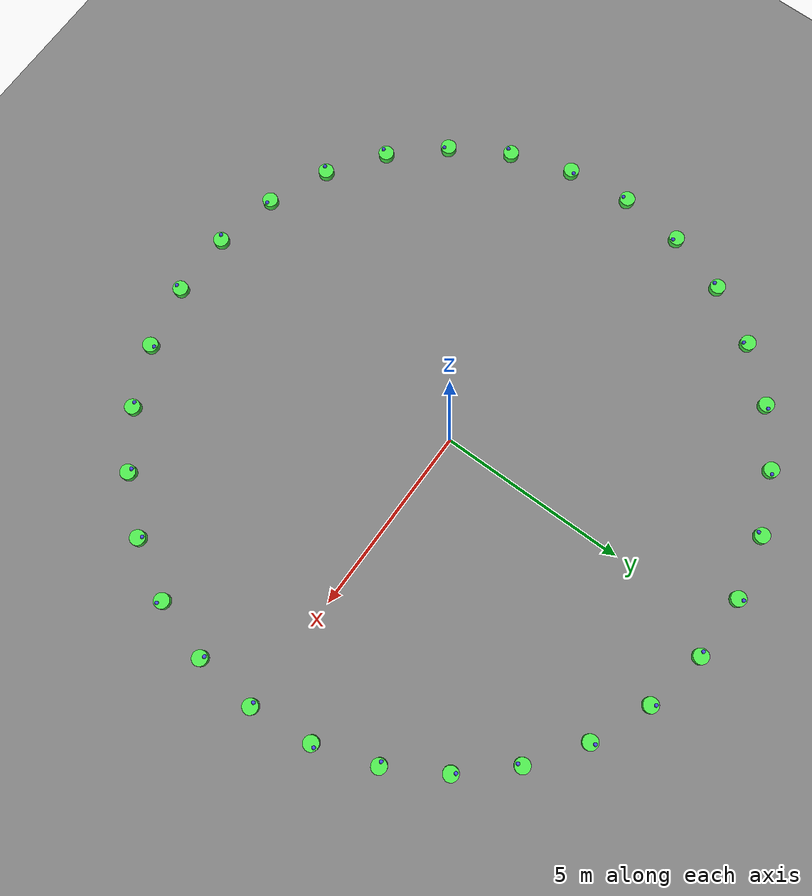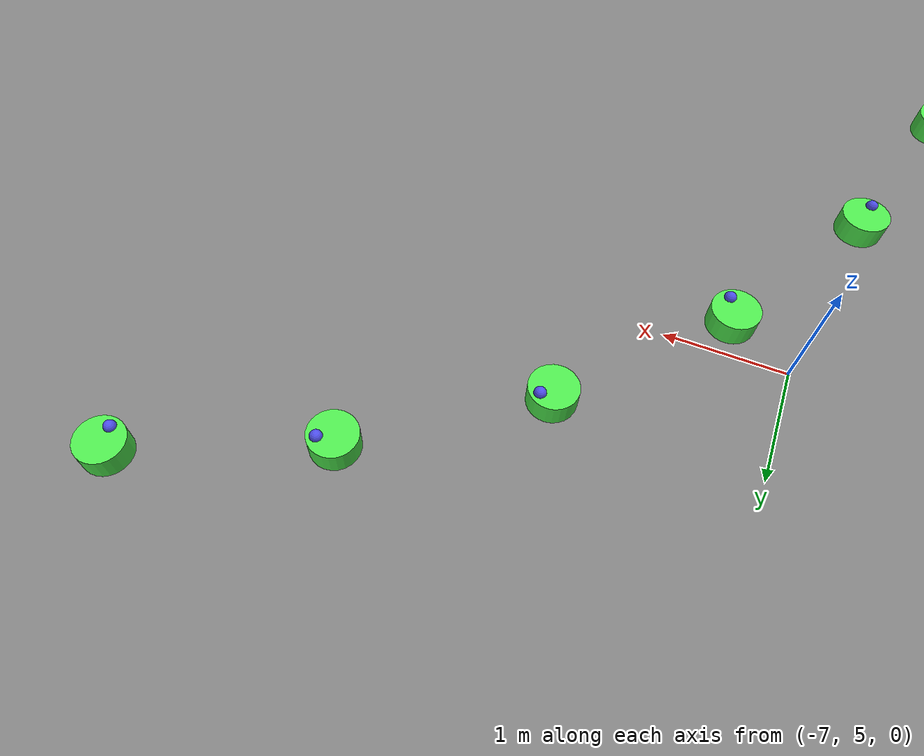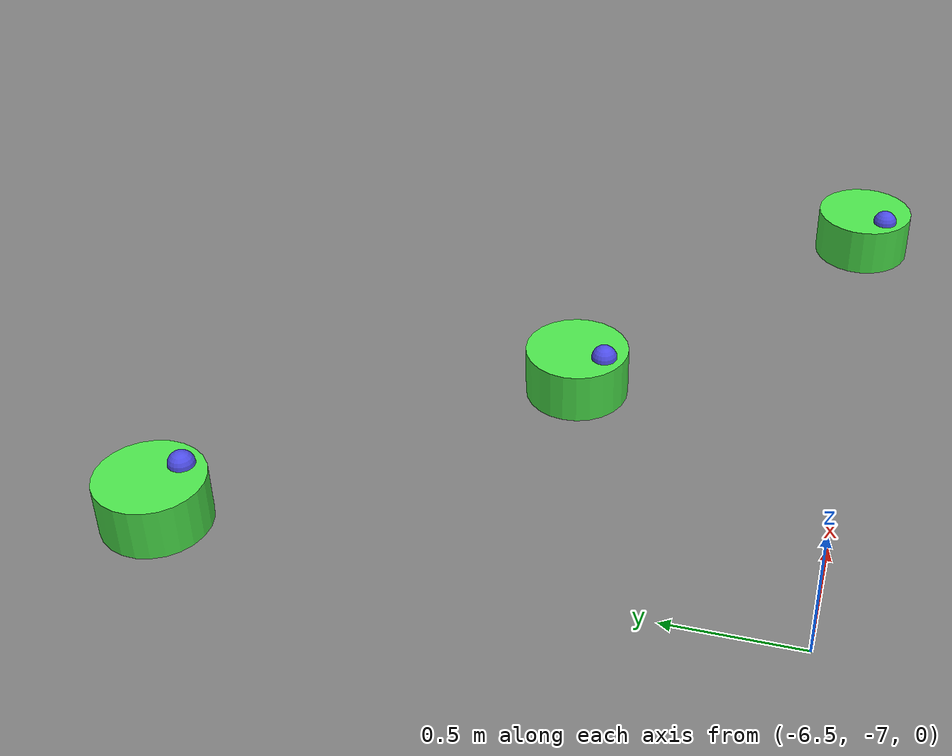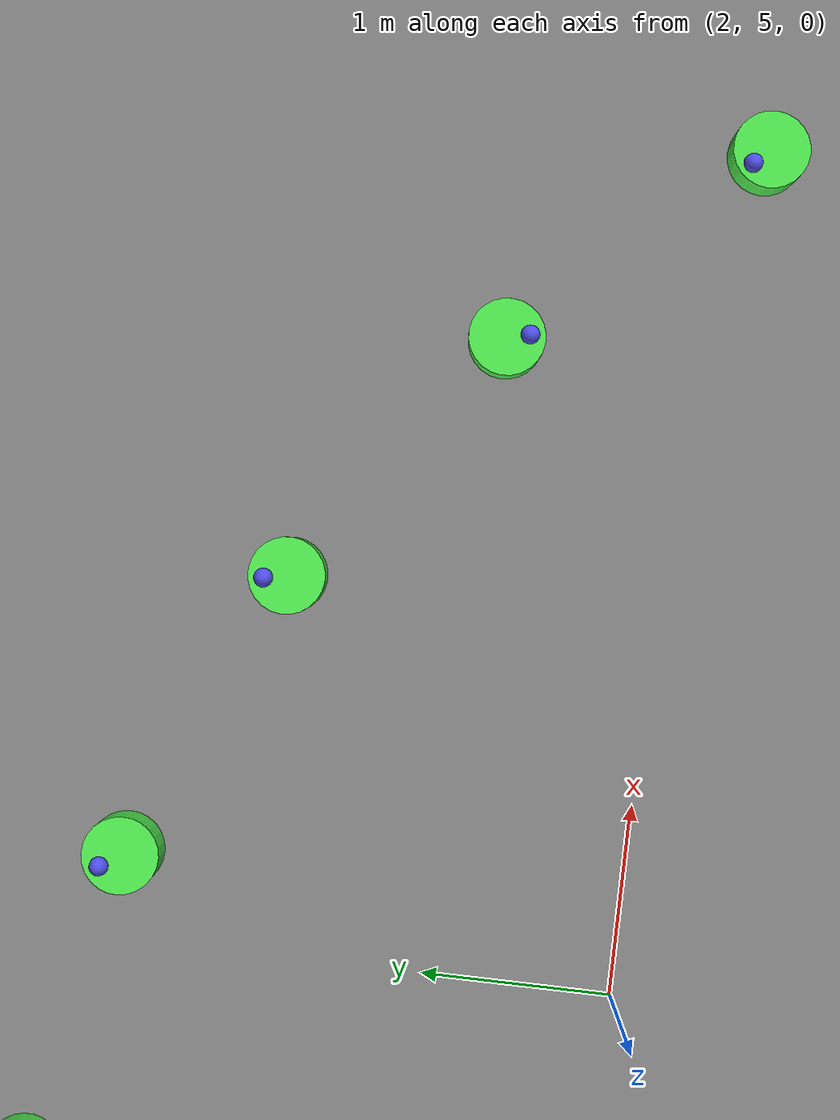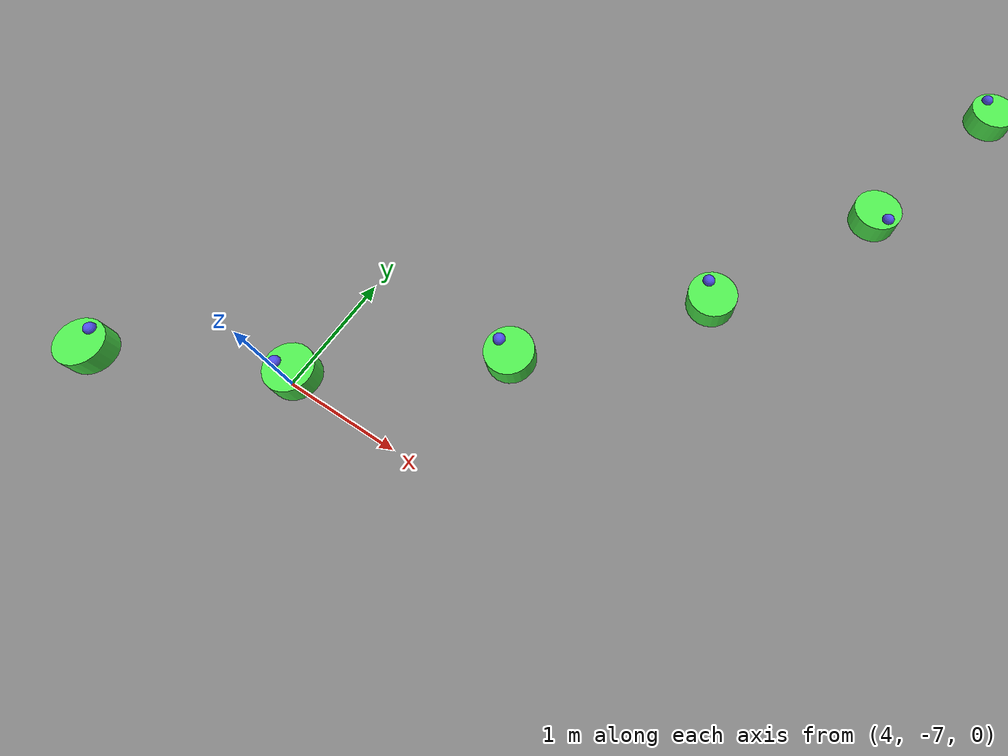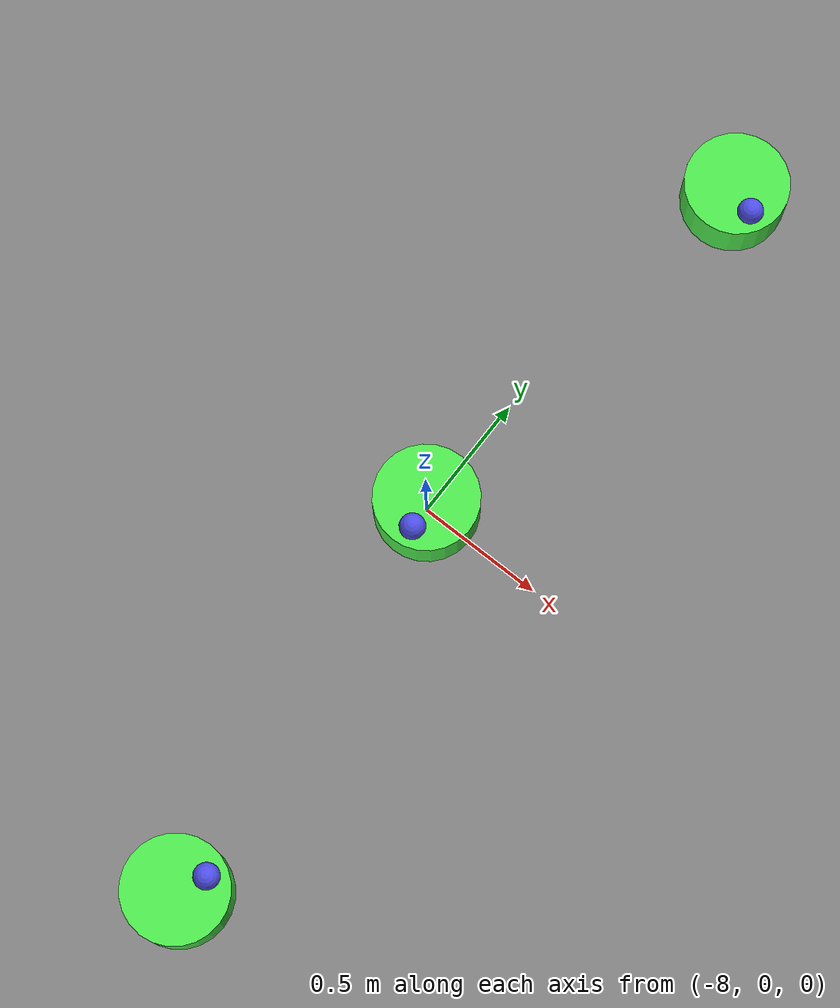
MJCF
<mujoco>
<default>
	<geom friction="0.1 0.005 0.0001"/>
</default>
<visual>
	 <global offwidth="1580" offheight="1580" />
</visual>
<worldbody>
<light name="uplight_0" diffuse="0.4 0.4 0.4" pos="0 0 20" dir="0 0 -1" />
<light name="uplight_1" diffuse="0.4 0.4 0.4" pos="10 10 20" dir="0 0 -1" />
<light name="uplight_2" diffuse="0.4 0.4 0.4" pos="-10 -10 20" dir="0 0 -1" />
<light name="uplight_3" diffuse="0.4 0.4 0.4" pos="10 -10 20" dir="0 0 -1" />
<light name="uplight_4" diffuse="0.4 0.4 0.4" pos="-10 10 20" dir="0 0 -1" />
<geom contype="2" friction="1 0.005 0.0001" pos="0 0 0" euler="0 0 0" type="plane" size="20 20 0.01" rgba="0.5 0.5 0.5 1"/>
<camera mode="fixed" pos="0 0 20" fovy="75"></camera>

<body name="robot_0" pos="8.0 0.0 0" euler="0 0 175.17976686611246">
    <!-- shell radius 17cm, wheel radius 4cm, distance between wheels 28cm -->
    <freejoint name="robot_0"></freejoint>
    <site name="front-flag_0" rgba="0.3 0.3 0.9 1" pos="0.12 0 0.22" type="sphere" size="0.05"></site>

    <body name="front-wheel_0" pos="0.14 0  0.01">
        <joint type="ball" pos="0 0 0"></joint>
        <geom friction="1 0.005 0.0001" contype="2" conaffinity="2" type="sphere" size="0.01"></geom>
    </body>

    <body name="back-wheel_0" pos="-0.14 0  0.01">
        <joint type="ball" pos="0 0 0"></joint>
        <geom friction="1 0.005 0.0001" contype="2" conaffinity="2" type="sphere" size="0.01"></geom>
    </body>

    <body name="left-wheel_0" pos="0 0.14 0.04" euler="90 0 0">
        <joint damping="0.3" name="left-wheel_0" type="hinge" pos="0 0 0" axis="0 0 -1"></joint>
        <geom friction="1 0.005 0.0001" contype="2" conaffinity="2" rgba="0.1 0.1 0.1 1" type="cylinder" size="0.04 0.005"></geom>
    </body>

    <body name="right-wheel_0" pos="0 -0.14 0.04" euler="-90 0  0">
        <joint damping="0.3" name="right-wheel_0" type="hinge" pos="0 0 0" axis="0 0 1"></joint>
        <geom friction="1 0.005 0.0001" contype="2" conaffinity="2" rgba="0.1 0.1 0.1 1" type="cylinder" size="0.04 0.005"></geom>
    </body>
    <body name="shell_0">
      <geom type="cylinder" rgba="0.3 0.9 0.3 1" pos="0 0 0.12" size="0.2 0.1"></geom>
    </body>
</body>

<body name="robot_1" pos="7.8251808058704455 1.6632935265420745 0" euler="0 0 71.27226613489458">
    <!-- shell radius 17cm, wheel radius 4cm, distance between wheels 28cm -->
    <freejoint name="robot_1"></freejoint>
    <site name="front-flag_1" rgba="0.3 0.3 0.9 1" pos="0.12 0 0.22" type="sphere" size="0.05"></site>

    <body name="front-wheel_1" pos="0.14 0  0.01">
        <joint type="ball" pos="0 0 0"></joint>
        <geom friction="1 0.005 0.0001" contype="2" conaffinity="2" type="sphere" size="0.01"></geom>
    </body>

    <body name="back-wheel_1" pos="-0.14 0  0.01">
        <joint type="ball" pos="0 0 0"></joint>
        <geom friction="1 0.005 0.0001" contype="2" conaffinity="2" type="sphere" size="0.01"></geom>
    </body>

    <body name="left-wheel_1" pos="0 0.14 0.04" euler="90 0 0">
        <joint damping="0.3" name="left-wheel_1" type="hinge" pos="0 0 0" axis="0 0 -1"></joint>
        <geom friction="1 0.005 0.0001" contype="2" conaffinity="2" rgba="0.1 0.1 0.1 1" type="cylinder" size="0.04 0.005"></geom>
    </body>

    <body name="right-wheel_1" pos="0 -0.14 0.04" euler="-90 0  0">
        <joint damping="0.3" name="right-wheel_1" type="hinge" pos="0 0 0" axis="0 0 1"></joint>
        <geom friction="1 0.005 0.0001" contype="2" conaffinity="2" rgba="0.1 0.1 0.1 1" type="cylinder" size="0.04 0.005"></geom>
    </body>
    <body name="shell_1">
      <geom type="cylinder" rgba="0.3 0.9 0.3 1" pos="0 0 0.12" size="0.2 0.1"></geom>
    </body>
</body>

<body name="robot_2" pos="7.308363661140807 3.2538931446064012 0" euler="0 0 190.2047109060873">
    <!-- shell radius 17cm, wheel radius 4cm, distance between wheels 28cm -->
    <freejoint name="robot_2"></freejoint>
    <site name="front-flag_2" rgba="0.3 0.3 0.9 1" pos="0.12 0 0.22" type="sphere" size="0.05"></site>

    <body name="front-wheel_2" pos="0.14 0  0.01">
        <joint type="ball" pos="0 0 0"></joint>
        <geom friction="1 0.005 0.0001" contype="2" conaffinity="2" type="sphere" size="0.01"></geom>
    </body>

    <body name="back-wheel_2" pos="-0.14 0  0.01">
        <joint type="ball" pos="0 0 0"></joint>
        <geom friction="1 0.005 0.0001" contype="2" conaffinity="2" type="sphere" size="0.01"></geom>
    </body>

    <body name="left-wheel_2" pos="0 0.14 0.04" euler="90 0 0">
        <joint damping="0.3" name="left-wheel_2" type="hinge" pos="0 0 0" axis="0 0 -1"></joint>
        <geom friction="1 0.005 0.0001" contype="2" conaffinity="2" rgba="0.1 0.1 0.1 1" type="cylinder" size="0.04 0.005"></geom>
    </body>

    <body name="right-wheel_2" pos="0 -0.14 0.04" euler="-90 0  0">
        <joint damping="0.3" name="right-wheel_2" type="hinge" pos="0 0 0" axis="0 0 1"></joint>
        <geom friction="1 0.005 0.0001" contype="2" conaffinity="2" rgba="0.1 0.1 0.1 1" type="cylinder" size="0.04 0.005"></geom>
    </body>
    <body name="shell_2">
      <geom type="cylinder" rgba="0.3 0.9 0.3 1" pos="0 0 0.12" size="0.2 0.1"></geom>
    </body>
</body>

<body name="robot_3" pos="6.47213595499958 4.702282018339785 0" euler="0 0 132.7303648254095">
    <!-- shell radius 17cm, wheel radius 4cm, distance between wheels 28cm -->
    <freejoint name="robot_3"></freejoint>
    <site name="front-flag_3" rgba="0.3 0.3 0.9 1" pos="0.12 0 0.22" type="sphere" size="0.05"></site>

    <body name="front-wheel_3" pos="0.14 0  0.01">
        <joint type="ball" pos="0 0 0"></joint>
        <geom friction="1 0.005 0.0001" contype="2" conaffinity="2" type="sphere" size="0.01"></geom>
    </body>

    <body name="back-wheel_3" pos="-0.14 0  0.01">
        <joint type="ball" pos="0 0 0"></joint>
        <geom friction="1 0.005 0.0001" contype="2" conaffinity="2" type="sphere" size="0.01"></geom>
    </body>

    <body name="left-wheel_3" pos="0 0.14 0.04" euler="90 0 0">
        <joint damping="0.3" name="left-wheel_3" type="hinge" pos="0 0 0" axis="0 0 -1"></joint>
        <geom friction="1 0.005 0.0001" contype="2" conaffinity="2" rgba="0.1 0.1 0.1 1" type="cylinder" size="0.04 0.005"></geom>
    </body>

    <body name="right-wheel_3" pos="0 -0.14 0.04" euler="-90 0  0">
        <joint damping="0.3" name="right-wheel_3" type="hinge" pos="0 0 0" axis="0 0 1"></joint>
        <geom friction="1 0.005 0.0001" contype="2" conaffinity="2" rgba="0.1 0.1 0.1 1" type="cylinder" size="0.04 0.005"></geom>
    </body>
    <body name="shell_3">
      <geom type="cylinder" rgba="0.3 0.9 0.3 1" pos="0 0 0.12" size="0.2 0.1"></geom>
    </body>
</body>

<body name="robot_4" pos="5.353044850870866 5.945158603819153 0" euler="0 0 281.8349707010589">
    <!-- shell radius 17cm, wheel radius 4cm, distance between wheels 28cm -->
    <freejoint name="robot_4"></freejoint>
    <site name="front-flag_4" rgba="0.3 0.3 0.9 1" pos="0.12 0 0.22" type="sphere" size="0.05"></site>

    <body name="front-wheel_4" pos="0.14 0  0.01">
        <joint type="ball" pos="0 0 0"></joint>
        <geom friction="1 0.005 0.0001" contype="2" conaffinity="2" type="sphere" size="0.01"></geom>
    </body>

    <body name="back-wheel_4" pos="-0.14 0  0.01">
        <joint type="ball" pos="0 0 0"></joint>
        <geom friction="1 0.005 0.0001" contype="2" conaffinity="2" type="sphere" size="0.01"></geom>
    </body>

    <body name="left-wheel_4" pos="0 0.14 0.04" euler="90 0 0">
        <joint damping="0.3" name="left-wheel_4" type="hinge" pos="0 0 0" axis="0 0 -1"></joint>
        <geom friction="1 0.005 0.0001" contype="2" conaffinity="2" rgba="0.1 0.1 0.1 1" type="cylinder" size="0.04 0.005"></geom>
    </body>

    <body name="right-wheel_4" pos="0 -0.14 0.04" euler="-90 0  0">
        <joint damping="0.3" name="right-wheel_4" type="hinge" pos="0 0 0" axis="0 0 1"></joint>
        <geom friction="1 0.005 0.0001" contype="2" conaffinity="2" rgba="0.1 0.1 0.1 1" type="cylinder" size="0.04 0.005"></geom>
    </body>
    <body name="shell_4">
      <geom type="cylinder" rgba="0.3 0.9 0.3 1" pos="0 0 0.12" size="0.2 0.1"></geom>
    </body>
</body>

<body name="robot_5" pos="4.000000000000001 6.928203230275509 0" euler="0 0 101.75491033799237">
    <!-- shell radius 17cm, wheel radius 4cm, distance between wheels 28cm -->
    <freejoint name="robot_5"></freejoint>
    <site name="front-flag_5" rgba="0.3 0.3 0.9 1" pos="0.12 0 0.22" type="sphere" size="0.05"></site>

    <body name="front-wheel_5" pos="0.14 0  0.01">
        <joint type="ball" pos="0 0 0"></joint>
        <geom friction="1 0.005 0.0001" contype="2" conaffinity="2" type="sphere" size="0.01"></geom>
    </body>

    <body name="back-wheel_5" pos="-0.14 0  0.01">
        <joint type="ball" pos="0 0 0"></joint>
        <geom friction="1 0.005 0.0001" contype="2" conaffinity="2" type="sphere" size="0.01"></geom>
    </body>

    <body name="left-wheel_5" pos="0 0.14 0.04" euler="90 0 0">
        <joint damping="0.3" name="left-wheel_5" type="hinge" pos="0 0 0" axis="0 0 -1"></joint>
        <geom friction="1 0.005 0.0001" contype="2" conaffinity="2" rgba="0.1 0.1 0.1 1" type="cylinder" size="0.04 0.005"></geom>
    </body>

    <body name="right-wheel_5" pos="0 -0.14 0.04" euler="-90 0  0">
        <joint damping="0.3" name="right-wheel_5" type="hinge" pos="0 0 0" axis="0 0 1"></joint>
        <geom friction="1 0.005 0.0001" contype="2" conaffinity="2" rgba="0.1 0.1 0.1 1" type="cylinder" size="0.04 0.005"></geom>
    </body>
    <body name="shell_5">
      <geom type="cylinder" rgba="0.3 0.9 0.3 1" pos="0 0 0.12" size="0.2 0.1"></geom>
    </body>
</body>

<body name="robot_6" pos="2.4721359549995796 7.608452130361228 0" euler="0 0 123.04947978521677">
    <!-- shell radius 17cm, wheel radius 4cm, distance between wheels 28cm -->
    <freejoint name="robot_6"></freejoint>
    <site name="front-flag_6" rgba="0.3 0.3 0.9 1" pos="0.12 0 0.22" type="sphere" size="0.05"></site>

    <body name="front-wheel_6" pos="0.14 0  0.01">
        <joint type="ball" pos="0 0 0"></joint>
        <geom friction="1 0.005 0.0001" contype="2" conaffinity="2" type="sphere" size="0.01"></geom>
    </body>

    <body name="back-wheel_6" pos="-0.14 0  0.01">
        <joint type="ball" pos="0 0 0"></joint>
        <geom friction="1 0.005 0.0001" contype="2" conaffinity="2" type="sphere" size="0.01"></geom>
    </body>

    <body name="left-wheel_6" pos="0 0.14 0.04" euler="90 0 0">
        <joint damping="0.3" name="left-wheel_6" type="hinge" pos="0 0 0" axis="0 0 -1"></joint>
        <geom friction="1 0.005 0.0001" contype="2" conaffinity="2" rgba="0.1 0.1 0.1 1" type="cylinder" size="0.04 0.005"></geom>
    </body>

    <body name="right-wheel_6" pos="0 -0.14 0.04" euler="-90 0  0">
        <joint damping="0.3" name="right-wheel_6" type="hinge" pos="0 0 0" axis="0 0 1"></joint>
        <geom friction="1 0.005 0.0001" contype="2" conaffinity="2" rgba="0.1 0.1 0.1 1" type="cylinder" size="0.04 0.005"></geom>
    </body>
    <body name="shell_6">
      <geom type="cylinder" rgba="0.3 0.9 0.3 1" pos="0 0 0.12" size="0.2 0.1"></geom>
    </body>
</body>

<body name="robot_7" pos="0.8362277061412294 7.956175162946186 0" euler="0 0 187.4988707946689">
    <!-- shell radius 17cm, wheel radius 4cm, distance between wheels 28cm -->
    <freejoint name="robot_7"></freejoint>
    <site name="front-flag_7" rgba="0.3 0.3 0.9 1" pos="0.12 0 0.22" type="sphere" size="0.05"></site>

    <body name="front-wheel_7" pos="0.14 0  0.01">
        <joint type="ball" pos="0 0 0"></joint>
        <geom friction="1 0.005 0.0001" contype="2" conaffinity="2" type="sphere" size="0.01"></geom>
    </body>

    <body name="back-wheel_7" pos="-0.14 0  0.01">
        <joint type="ball" pos="0 0 0"></joint>
        <geom friction="1 0.005 0.0001" contype="2" conaffinity="2" type="sphere" size="0.01"></geom>
    </body>

    <body name="left-wheel_7" pos="0 0.14 0.04" euler="90 0 0">
        <joint damping="0.3" name="left-wheel_7" type="hinge" pos="0 0 0" axis="0 0 -1"></joint>
        <geom friction="1 0.005 0.0001" contype="2" conaffinity="2" rgba="0.1 0.1 0.1 1" type="cylinder" size="0.04 0.005"></geom>
    </body>

    <body name="right-wheel_7" pos="0 -0.14 0.04" euler="-90 0  0">
        <joint damping="0.3" name="right-wheel_7" type="hinge" pos="0 0 0" axis="0 0 1"></joint>
        <geom friction="1 0.005 0.0001" contype="2" conaffinity="2" rgba="0.1 0.1 0.1 1" type="cylinder" size="0.04 0.005"></geom>
    </body>
    <body name="shell_7">
      <geom type="cylinder" rgba="0.3 0.9 0.3 1" pos="0 0 0.12" size="0.2 0.1"></geom>
    </body>
</body>

<body name="robot_8" pos="-0.8362277061412267 7.956175162946187 0" euler="0 0 102.82999987320555">
    <!-- shell radius 17cm, wheel radius 4cm, distance between wheels 28cm -->
    <freejoint name="robot_8"></freejoint>
    <site name="front-flag_8" rgba="0.3 0.3 0.9 1" pos="0.12 0 0.22" type="sphere" size="0.05"></site>

    <body name="front-wheel_8" pos="0.14 0  0.01">
        <joint type="ball" pos="0 0 0"></joint>
        <geom friction="1 0.005 0.0001" contype="2" conaffinity="2" type="sphere" size="0.01"></geom>
    </body>

    <body name="back-wheel_8" pos="-0.14 0  0.01">
        <joint type="ball" pos="0 0 0"></joint>
        <geom friction="1 0.005 0.0001" contype="2" conaffinity="2" type="sphere" size="0.01"></geom>
    </body>

    <body name="left-wheel_8" pos="0 0.14 0.04" euler="90 0 0">
        <joint damping="0.3" name="left-wheel_8" type="hinge" pos="0 0 0" axis="0 0 -1"></joint>
        <geom friction="1 0.005 0.0001" contype="2" conaffinity="2" rgba="0.1 0.1 0.1 1" type="cylinder" size="0.04 0.005"></geom>
    </body>

    <body name="right-wheel_8" pos="0 -0.14 0.04" euler="-90 0  0">
        <joint damping="0.3" name="right-wheel_8" type="hinge" pos="0 0 0" axis="0 0 1"></joint>
        <geom friction="1 0.005 0.0001" contype="2" conaffinity="2" rgba="0.1 0.1 0.1 1" type="cylinder" size="0.04 0.005"></geom>
    </body>
    <body name="shell_8">
      <geom type="cylinder" rgba="0.3 0.9 0.3 1" pos="0 0 0.12" size="0.2 0.1"></geom>
    </body>
</body>

<body name="robot_9" pos="-2.4721359549995787 7.608452130361229 0" euler="0 0 264.263178795489">
    <!-- shell radius 17cm, wheel radius 4cm, distance between wheels 28cm -->
    <freejoint name="robot_9"></freejoint>
    <site name="front-flag_9" rgba="0.3 0.3 0.9 1" pos="0.12 0 0.22" type="sphere" size="0.05"></site>

    <body name="front-wheel_9" pos="0.14 0  0.01">
        <joint type="ball" pos="0 0 0"></joint>
        <geom friction="1 0.005 0.0001" contype="2" conaffinity="2" type="sphere" size="0.01"></geom>
    </body>

    <body name="back-wheel_9" pos="-0.14 0  0.01">
        <joint type="ball" pos="0 0 0"></joint>
        <geom friction="1 0.005 0.0001" contype="2" conaffinity="2" type="sphere" size="0.01"></geom>
    </body>

    <body name="left-wheel_9" pos="0 0.14 0.04" euler="90 0 0">
        <joint damping="0.3" name="left-wheel_9" type="hinge" pos="0 0 0" axis="0 0 -1"></joint>
        <geom friction="1 0.005 0.0001" contype="2" conaffinity="2" rgba="0.1 0.1 0.1 1" type="cylinder" size="0.04 0.005"></geom>
    </body>

    <body name="right-wheel_9" pos="0 -0.14 0.04" euler="-90 0  0">
        <joint damping="0.3" name="right-wheel_9" type="hinge" pos="0 0 0" axis="0 0 1"></joint>
        <geom friction="1 0.005 0.0001" contype="2" conaffinity="2" rgba="0.1 0.1 0.1 1" type="cylinder" size="0.04 0.005"></geom>
    </body>
    <body name="shell_9">
      <geom type="cylinder" rgba="0.3 0.9 0.3 1" pos="0 0 0.12" size="0.2 0.1"></geom>
    </body>
</body>

<body name="robot_10" pos="-3.9999999999999982 6.92820323027551 0" euler="0 0 32.669801687568246">
    <!-- shell radius 17cm, wheel radius 4cm, distance between wheels 28cm -->
    <freejoint name="robot_10"></freejoint>
    <site name="front-flag_10" rgba="0.3 0.3 0.9 1" pos="0.12 0 0.22" type="sphere" size="0.05"></site>

    <body name="front-wheel_10" pos="0.14 0  0.01">
        <joint type="ball" pos="0 0 0"></joint>
        <geom friction="1 0.005 0.0001" contype="2" conaffinity="2" type="sphere" size="0.01"></geom>
    </body>

    <body name="back-wheel_10" pos="-0.14 0  0.01">
        <joint type="ball" pos="0 0 0"></joint>
        <geom friction="1 0.005 0.0001" contype="2" conaffinity="2" type="sphere" size="0.01"></geom>
    </body>

    <body name="left-wheel_10" pos="0 0.14 0.04" euler="90 0 0">
        <joint damping="0.3" name="left-wheel_10" type="hinge" pos="0 0 0" axis="0 0 -1"></joint>
        <geom friction="1 0.005 0.0001" contype="2" conaffinity="2" rgba="0.1 0.1 0.1 1" type="cylinder" size="0.04 0.005"></geom>
    </body>

    <body name="right-wheel_10" pos="0 -0.14 0.04" euler="-90 0  0">
        <joint damping="0.3" name="right-wheel_10" type="hinge" pos="0 0 0" axis="0 0 1"></joint>
        <geom friction="1 0.005 0.0001" contype="2" conaffinity="2" rgba="0.1 0.1 0.1 1" type="cylinder" size="0.04 0.005"></geom>
    </body>
    <body name="shell_10">
      <geom type="cylinder" rgba="0.3 0.9 0.3 1" pos="0 0 0.12" size="0.2 0.1"></geom>
    </body>
</body>

<body name="robot_11" pos="-5.353044850870863 5.945158603819156 0" euler="0 0 48.75332740168098">
    <!-- shell radius 17cm, wheel radius 4cm, distance between wheels 28cm -->
    <freejoint name="robot_11"></freejoint>
    <site name="front-flag_11" rgba="0.3 0.3 0.9 1" pos="0.12 0 0.22" type="sphere" size="0.05"></site>

    <body name="front-wheel_11" pos="0.14 0  0.01">
        <joint type="ball" pos="0 0 0"></joint>
        <geom friction="1 0.005 0.0001" contype="2" conaffinity="2" type="sphere" size="0.01"></geom>
    </body>

    <body name="back-wheel_11" pos="-0.14 0  0.01">
        <joint type="ball" pos="0 0 0"></joint>
        <geom friction="1 0.005 0.0001" contype="2" conaffinity="2" type="sphere" size="0.01"></geom>
    </body>

    <body name="left-wheel_11" pos="0 0.14 0.04" euler="90 0 0">
        <joint damping="0.3" name="left-wheel_11" type="hinge" pos="0 0 0" axis="0 0 -1"></joint>
        <geom friction="1 0.005 0.0001" contype="2" conaffinity="2" rgba="0.1 0.1 0.1 1" type="cylinder" size="0.04 0.005"></geom>
    </body>

    <body name="right-wheel_11" pos="0 -0.14 0.04" euler="-90 0  0">
        <joint damping="0.3" name="right-wheel_11" type="hinge" pos="0 0 0" axis="0 0 1"></joint>
        <geom friction="1 0.005 0.0001" contype="2" conaffinity="2" rgba="0.1 0.1 0.1 1" type="cylinder" size="0.04 0.005"></geom>
    </body>
    <body name="shell_11">
      <geom type="cylinder" rgba="0.3 0.9 0.3 1" pos="0 0 0.12" size="0.2 0.1"></geom>
    </body>
</body>

<body name="robot_12" pos="-6.472135954999579 4.702282018339786 0" euler="0 0 306.6042002253721">
    <!-- shell radius 17cm, wheel radius 4cm, distance between wheels 28cm -->
    <freejoint name="robot_12"></freejoint>
    <site name="front-flag_12" rgba="0.3 0.3 0.9 1" pos="0.12 0 0.22" type="sphere" size="0.05"></site>

    <body name="front-wheel_12" pos="0.14 0  0.01">
        <joint type="ball" pos="0 0 0"></joint>
        <geom friction="1 0.005 0.0001" contype="2" conaffinity="2" type="sphere" size="0.01"></geom>
    </body>

    <body name="back-wheel_12" pos="-0.14 0  0.01">
        <joint type="ball" pos="0 0 0"></joint>
        <geom friction="1 0.005 0.0001" contype="2" conaffinity="2" type="sphere" size="0.01"></geom>
    </body>

    <body name="left-wheel_12" pos="0 0.14 0.04" euler="90 0 0">
        <joint damping="0.3" name="left-wheel_12" type="hinge" pos="0 0 0" axis="0 0 -1"></joint>
        <geom friction="1 0.005 0.0001" contype="2" conaffinity="2" rgba="0.1 0.1 0.1 1" type="cylinder" size="0.04 0.005"></geom>
    </body>

    <body name="right-wheel_12" pos="0 -0.14 0.04" euler="-90 0  0">
        <joint damping="0.3" name="right-wheel_12" type="hinge" pos="0 0 0" axis="0 0 1"></joint>
        <geom friction="1 0.005 0.0001" contype="2" conaffinity="2" rgba="0.1 0.1 0.1 1" type="cylinder" size="0.04 0.005"></geom>
    </body>
    <body name="shell_12">
      <geom type="cylinder" rgba="0.3 0.9 0.3 1" pos="0 0 0.12" size="0.2 0.1"></geom>
    </body>
</body>

<body name="robot_13" pos="-7.308363661140806 3.2538931446064034 0" euler="0 0 256.653524536923">
    <!-- shell radius 17cm, wheel radius 4cm, distance between wheels 28cm -->
    <freejoint name="robot_13"></freejoint>
    <site name="front-flag_13" rgba="0.3 0.3 0.9 1" pos="0.12 0 0.22" type="sphere" size="0.05"></site>

    <body name="front-wheel_13" pos="0.14 0  0.01">
        <joint type="ball" pos="0 0 0"></joint>
        <geom friction="1 0.005 0.0001" contype="2" conaffinity="2" type="sphere" size="0.01"></geom>
    </body>

    <body name="back-wheel_13" pos="-0.14 0  0.01">
        <joint type="ball" pos="0 0 0"></joint>
        <geom friction="1 0.005 0.0001" contype="2" conaffinity="2" type="sphere" size="0.01"></geom>
    </body>

    <body name="left-wheel_13" pos="0 0.14 0.04" euler="90 0 0">
        <joint damping="0.3" name="left-wheel_13" type="hinge" pos="0 0 0" axis="0 0 -1"></joint>
        <geom friction="1 0.005 0.0001" contype="2" conaffinity="2" rgba="0.1 0.1 0.1 1" type="cylinder" size="0.04 0.005"></geom>
    </body>

    <body name="right-wheel_13" pos="0 -0.14 0.04" euler="-90 0  0">
        <joint damping="0.3" name="right-wheel_13" type="hinge" pos="0 0 0" axis="0 0 1"></joint>
        <geom friction="1 0.005 0.0001" contype="2" conaffinity="2" rgba="0.1 0.1 0.1 1" type="cylinder" size="0.04 0.005"></geom>
    </body>
    <body name="shell_13">
      <geom type="cylinder" rgba="0.3 0.9 0.3 1" pos="0 0 0.12" size="0.2 0.1"></geom>
    </body>
</body>

<body name="robot_14" pos="-7.825180805870445 1.6632935265420778 0" euler="0 0 330.9116634937418">
    <!-- shell radius 17cm, wheel radius 4cm, distance between wheels 28cm -->
    <freejoint name="robot_14"></freejoint>
    <site name="front-flag_14" rgba="0.3 0.3 0.9 1" pos="0.12 0 0.22" type="sphere" size="0.05"></site>

    <body name="front-wheel_14" pos="0.14 0  0.01">
        <joint type="ball" pos="0 0 0"></joint>
        <geom friction="1 0.005 0.0001" contype="2" conaffinity="2" type="sphere" size="0.01"></geom>
    </body>

    <body name="back-wheel_14" pos="-0.14 0  0.01">
        <joint type="ball" pos="0 0 0"></joint>
        <geom friction="1 0.005 0.0001" contype="2" conaffinity="2" type="sphere" size="0.01"></geom>
    </body>

    <body name="left-wheel_14" pos="0 0.14 0.04" euler="90 0 0">
        <joint damping="0.3" name="left-wheel_14" type="hinge" pos="0 0 0" axis="0 0 -1"></joint>
        <geom friction="1 0.005 0.0001" contype="2" conaffinity="2" rgba="0.1 0.1 0.1 1" type="cylinder" size="0.04 0.005"></geom>
    </body>

    <body name="right-wheel_14" pos="0 -0.14 0.04" euler="-90 0  0">
        <joint damping="0.3" name="right-wheel_14" type="hinge" pos="0 0 0" axis="0 0 1"></joint>
        <geom friction="1 0.005 0.0001" contype="2" conaffinity="2" rgba="0.1 0.1 0.1 1" type="cylinder" size="0.04 0.005"></geom>
    </body>
    <body name="shell_14">
      <geom type="cylinder" rgba="0.3 0.9 0.3 1" pos="0 0 0.12" size="0.2 0.1"></geom>
    </body>
</body>

<body name="robot_15" pos="-8.0 9.797174393178826e-16 0" euler="0 0 282.78703863731994">
    <!-- shell radius 17cm, wheel radius 4cm, distance between wheels 28cm -->
    <freejoint name="robot_15"></freejoint>
    <site name="front-flag_15" rgba="0.3 0.3 0.9 1" pos="0.12 0 0.22" type="sphere" size="0.05"></site>

    <body name="front-wheel_15" pos="0.14 0  0.01">
        <joint type="ball" pos="0 0 0"></joint>
        <geom friction="1 0.005 0.0001" contype="2" conaffinity="2" type="sphere" size="0.01"></geom>
    </body>

    <body name="back-wheel_15" pos="-0.14 0  0.01">
        <joint type="ball" pos="0 0 0"></joint>
        <geom friction="1 0.005 0.0001" contype="2" conaffinity="2" type="sphere" size="0.01"></geom>
    </body>

    <body name="left-wheel_15" pos="0 0.14 0.04" euler="90 0 0">
        <joint damping="0.3" name="left-wheel_15" type="hinge" pos="0 0 0" axis="0 0 -1"></joint>
        <geom friction="1 0.005 0.0001" contype="2" conaffinity="2" rgba="0.1 0.1 0.1 1" type="cylinder" size="0.04 0.005"></geom>
    </body>

    <body name="right-wheel_15" pos="0 -0.14 0.04" euler="-90 0  0">
        <joint damping="0.3" name="right-wheel_15" type="hinge" pos="0 0 0" axis="0 0 1"></joint>
        <geom friction="1 0.005 0.0001" contype="2" conaffinity="2" rgba="0.1 0.1 0.1 1" type="cylinder" size="0.04 0.005"></geom>
    </body>
    <body name="shell_15">
      <geom type="cylinder" rgba="0.3 0.9 0.3 1" pos="0 0 0.12" size="0.2 0.1"></geom>
    </body>
</body>

<body name="robot_16" pos="-7.8251808058704455 -1.6632935265420725 0" euler="0 0 60.79388417314348">
    <!-- shell radius 17cm, wheel radius 4cm, distance between wheels 28cm -->
    <freejoint name="robot_16"></freejoint>
    <site name="front-flag_16" rgba="0.3 0.3 0.9 1" pos="0.12 0 0.22" type="sphere" size="0.05"></site>

    <body name="front-wheel_16" pos="0.14 0  0.01">
        <joint type="ball" pos="0 0 0"></joint>
        <geom friction="1 0.005 0.0001" contype="2" conaffinity="2" type="sphere" size="0.01"></geom>
    </body>

    <body name="back-wheel_16" pos="-0.14 0  0.01">
        <joint type="ball" pos="0 0 0"></joint>
        <geom friction="1 0.005 0.0001" contype="2" conaffinity="2" type="sphere" size="0.01"></geom>
    </body>

    <body name="left-wheel_16" pos="0 0.14 0.04" euler="90 0 0">
        <joint damping="0.3" name="left-wheel_16" type="hinge" pos="0 0 0" axis="0 0 -1"></joint>
        <geom friction="1 0.005 0.0001" contype="2" conaffinity="2" rgba="0.1 0.1 0.1 1" type="cylinder" size="0.04 0.005"></geom>
    </body>

    <body name="right-wheel_16" pos="0 -0.14 0.04" euler="-90 0  0">
        <joint damping="0.3" name="right-wheel_16" type="hinge" pos="0 0 0" axis="0 0 1"></joint>
        <geom friction="1 0.005 0.0001" contype="2" conaffinity="2" rgba="0.1 0.1 0.1 1" type="cylinder" size="0.04 0.005"></geom>
    </body>
    <body name="shell_16">
      <geom type="cylinder" rgba="0.3 0.9 0.3 1" pos="0 0 0.12" size="0.2 0.1"></geom>
    </body>
</body>

<body name="robot_17" pos="-7.308363661140809 -3.2538931446063986 0" euler="0 0 250.65052055430962">
    <!-- shell radius 17cm, wheel radius 4cm, distance between wheels 28cm -->
    <freejoint name="robot_17"></freejoint>
    <site name="front-flag_17" rgba="0.3 0.3 0.9 1" pos="0.12 0 0.22" type="sphere" size="0.05"></site>

    <body name="front-wheel_17" pos="0.14 0  0.01">
        <joint type="ball" pos="0 0 0"></joint>
        <geom friction="1 0.005 0.0001" contype="2" conaffinity="2" type="sphere" size="0.01"></geom>
    </body>

    <body name="back-wheel_17" pos="-0.14 0  0.01">
        <joint type="ball" pos="0 0 0"></joint>
        <geom friction="1 0.005 0.0001" contype="2" conaffinity="2" type="sphere" size="0.01"></geom>
    </body>

    <body name="left-wheel_17" pos="0 0.14 0.04" euler="90 0 0">
        <joint damping="0.3" name="left-wheel_17" type="hinge" pos="0 0 0" axis="0 0 -1"></joint>
        <geom friction="1 0.005 0.0001" contype="2" conaffinity="2" rgba="0.1 0.1 0.1 1" type="cylinder" size="0.04 0.005"></geom>
    </body>

    <body name="right-wheel_17" pos="0 -0.14 0.04" euler="-90 0  0">
        <joint damping="0.3" name="right-wheel_17" type="hinge" pos="0 0 0" axis="0 0 1"></joint>
        <geom friction="1 0.005 0.0001" contype="2" conaffinity="2" rgba="0.1 0.1 0.1 1" type="cylinder" size="0.04 0.005"></geom>
    </body>
    <body name="shell_17">
      <geom type="cylinder" rgba="0.3 0.9 0.3 1" pos="0 0 0.12" size="0.2 0.1"></geom>
    </body>
</body>

<body name="robot_18" pos="-6.4721359549995805 -4.702282018339784 0" euler="0 0 320.0202549218056">
    <!-- shell radius 17cm, wheel radius 4cm, distance between wheels 28cm -->
    <freejoint name="robot_18"></freejoint>
    <site name="front-flag_18" rgba="0.3 0.3 0.9 1" pos="0.12 0 0.22" type="sphere" size="0.05"></site>

    <body name="front-wheel_18" pos="0.14 0  0.01">
        <joint type="ball" pos="0 0 0"></joint>
        <geom friction="1 0.005 0.0001" contype="2" conaffinity="2" type="sphere" size="0.01"></geom>
    </body>

    <body name="back-wheel_18" pos="-0.14 0  0.01">
        <joint type="ball" pos="0 0 0"></joint>
        <geom friction="1 0.005 0.0001" contype="2" conaffinity="2" type="sphere" size="0.01"></geom>
    </body>

    <body name="left-wheel_18" pos="0 0.14 0.04" euler="90 0 0">
        <joint damping="0.3" name="left-wheel_18" type="hinge" pos="0 0 0" axis="0 0 -1"></joint>
        <geom friction="1 0.005 0.0001" contype="2" conaffinity="2" rgba="0.1 0.1 0.1 1" type="cylinder" size="0.04 0.005"></geom>
    </body>

    <body name="right-wheel_18" pos="0 -0.14 0.04" euler="-90 0  0">
        <joint damping="0.3" name="right-wheel_18" type="hinge" pos="0 0 0" axis="0 0 1"></joint>
        <geom friction="1 0.005 0.0001" contype="2" conaffinity="2" rgba="0.1 0.1 0.1 1" type="cylinder" size="0.04 0.005"></geom>
    </body>
    <body name="shell_18">
      <geom type="cylinder" rgba="0.3 0.9 0.3 1" pos="0 0 0.12" size="0.2 0.1"></geom>
    </body>
</body>

<body name="robot_19" pos="-5.353044850870868 -5.945158603819152 0" euler="0 0 253.17155164047412">
    <!-- shell radius 17cm, wheel radius 4cm, distance between wheels 28cm -->
    <freejoint name="robot_19"></freejoint>
    <site name="front-flag_19" rgba="0.3 0.3 0.9 1" pos="0.12 0 0.22" type="sphere" size="0.05"></site>

    <body name="front-wheel_19" pos="0.14 0  0.01">
        <joint type="ball" pos="0 0 0"></joint>
        <geom friction="1 0.005 0.0001" contype="2" conaffinity="2" type="sphere" size="0.01"></geom>
    </body>

    <body name="back-wheel_19" pos="-0.14 0  0.01">
        <joint type="ball" pos="0 0 0"></joint>
        <geom friction="1 0.005 0.0001" contype="2" conaffinity="2" type="sphere" size="0.01"></geom>
    </body>

    <body name="left-wheel_19" pos="0 0.14 0.04" euler="90 0 0">
        <joint damping="0.3" name="left-wheel_19" type="hinge" pos="0 0 0" axis="0 0 -1"></joint>
        <geom friction="1 0.005 0.0001" contype="2" conaffinity="2" rgba="0.1 0.1 0.1 1" type="cylinder" size="0.04 0.005"></geom>
    </body>

    <body name="right-wheel_19" pos="0 -0.14 0.04" euler="-90 0  0">
        <joint damping="0.3" name="right-wheel_19" type="hinge" pos="0 0 0" axis="0 0 1"></joint>
        <geom friction="1 0.005 0.0001" contype="2" conaffinity="2" rgba="0.1 0.1 0.1 1" type="cylinder" size="0.04 0.005"></geom>
    </body>
    <body name="shell_19">
      <geom type="cylinder" rgba="0.3 0.9 0.3 1" pos="0 0 0.12" size="0.2 0.1"></geom>
    </body>
</body>

<body name="robot_20" pos="-4.0000000000000036 -6.928203230275507 0" euler="0 0 229.54536159551188">
    <!-- shell radius 17cm, wheel radius 4cm, distance between wheels 28cm -->
    <freejoint name="robot_20"></freejoint>
    <site name="front-flag_20" rgba="0.3 0.3 0.9 1" pos="0.12 0 0.22" type="sphere" size="0.05"></site>

    <body name="front-wheel_20" pos="0.14 0  0.01">
        <joint type="ball" pos="0 0 0"></joint>
        <geom friction="1 0.005 0.0001" contype="2" conaffinity="2" type="sphere" size="0.01"></geom>
    </body>

    <body name="back-wheel_20" pos="-0.14 0  0.01">
        <joint type="ball" pos="0 0 0"></joint>
        <geom friction="1 0.005 0.0001" contype="2" conaffinity="2" type="sphere" size="0.01"></geom>
    </body>

    <body name="left-wheel_20" pos="0 0.14 0.04" euler="90 0 0">
        <joint damping="0.3" name="left-wheel_20" type="hinge" pos="0 0 0" axis="0 0 -1"></joint>
        <geom friction="1 0.005 0.0001" contype="2" conaffinity="2" rgba="0.1 0.1 0.1 1" type="cylinder" size="0.04 0.005"></geom>
    </body>

    <body name="right-wheel_20" pos="0 -0.14 0.04" euler="-90 0  0">
        <joint damping="0.3" name="right-wheel_20" type="hinge" pos="0 0 0" axis="0 0 1"></joint>
        <geom friction="1 0.005 0.0001" contype="2" conaffinity="2" rgba="0.1 0.1 0.1 1" type="cylinder" size="0.04 0.005"></geom>
    </body>
    <body name="shell_20">
      <geom type="cylinder" rgba="0.3 0.9 0.3 1" pos="0 0 0.12" size="0.2 0.1"></geom>
    </body>
</body>

<body name="robot_21" pos="-2.4721359549995805 -7.608452130361228 0" euler="0 0 355.98648334097334">
    <!-- shell radius 17cm, wheel radius 4cm, distance between wheels 28cm -->
    <freejoint name="robot_21"></freejoint>
    <site name="front-flag_21" rgba="0.3 0.3 0.9 1" pos="0.12 0 0.22" type="sphere" size="0.05"></site>

    <body name="front-wheel_21" pos="0.14 0  0.01">
        <joint type="ball" pos="0 0 0"></joint>
        <geom friction="1 0.005 0.0001" contype="2" conaffinity="2" type="sphere" size="0.01"></geom>
    </body>

    <body name="back-wheel_21" pos="-0.14 0  0.01">
        <joint type="ball" pos="0 0 0"></joint>
        <geom friction="1 0.005 0.0001" contype="2" conaffinity="2" type="sphere" size="0.01"></geom>
    </body>

    <body name="left-wheel_21" pos="0 0.14 0.04" euler="90 0 0">
        <joint damping="0.3" name="left-wheel_21" type="hinge" pos="0 0 0" axis="0 0 -1"></joint>
        <geom friction="1 0.005 0.0001" contype="2" conaffinity="2" rgba="0.1 0.1 0.1 1" type="cylinder" size="0.04 0.005"></geom>
    </body>

    <body name="right-wheel_21" pos="0 -0.14 0.04" euler="-90 0  0">
        <joint damping="0.3" name="right-wheel_21" type="hinge" pos="0 0 0" axis="0 0 1"></joint>
        <geom friction="1 0.005 0.0001" contype="2" conaffinity="2" rgba="0.1 0.1 0.1 1" type="cylinder" size="0.04 0.005"></geom>
    </body>
    <body name="shell_21">
      <geom type="cylinder" rgba="0.3 0.9 0.3 1" pos="0 0 0.12" size="0.2 0.1"></geom>
    </body>
</body>

<body name="robot_22" pos="-0.8362277061412339 -7.956175162946186 0" euler="0 0 217.76950467242582">
    <!-- shell radius 17cm, wheel radius 4cm, distance between wheels 28cm -->
    <freejoint name="robot_22"></freejoint>
    <site name="front-flag_22" rgba="0.3 0.3 0.9 1" pos="0.12 0 0.22" type="sphere" size="0.05"></site>

    <body name="front-wheel_22" pos="0.14 0  0.01">
        <joint type="ball" pos="0 0 0"></joint>
        <geom friction="1 0.005 0.0001" contype="2" conaffinity="2" type="sphere" size="0.01"></geom>
    </body>

    <body name="back-wheel_22" pos="-0.14 0  0.01">
        <joint type="ball" pos="0 0 0"></joint>
        <geom friction="1 0.005 0.0001" contype="2" conaffinity="2" type="sphere" size="0.01"></geom>
    </body>

    <body name="left-wheel_22" pos="0 0.14 0.04" euler="90 0 0">
        <joint damping="0.3" name="left-wheel_22" type="hinge" pos="0 0 0" axis="0 0 -1"></joint>
        <geom friction="1 0.005 0.0001" contype="2" conaffinity="2" rgba="0.1 0.1 0.1 1" type="cylinder" size="0.04 0.005"></geom>
    </body>

    <body name="right-wheel_22" pos="0 -0.14 0.04" euler="-90 0  0">
        <joint damping="0.3" name="right-wheel_22" type="hinge" pos="0 0 0" axis="0 0 1"></joint>
        <geom friction="1 0.005 0.0001" contype="2" conaffinity="2" rgba="0.1 0.1 0.1 1" type="cylinder" size="0.04 0.005"></geom>
    </body>
    <body name="shell_22">
      <geom type="cylinder" rgba="0.3 0.9 0.3 1" pos="0 0 0.12" size="0.2 0.1"></geom>
    </body>
</body>

<body name="robot_23" pos="0.8362277061412239 -7.956175162946187 0" euler="0 0 268.71580253219526">
    <!-- shell radius 17cm, wheel radius 4cm, distance between wheels 28cm -->
    <freejoint name="robot_23"></freejoint>
    <site name="front-flag_23" rgba="0.3 0.3 0.9 1" pos="0.12 0 0.22" type="sphere" size="0.05"></site>

    <body name="front-wheel_23" pos="0.14 0  0.01">
        <joint type="ball" pos="0 0 0"></joint>
        <geom friction="1 0.005 0.0001" contype="2" conaffinity="2" type="sphere" size="0.01"></geom>
    </body>

    <body name="back-wheel_23" pos="-0.14 0  0.01">
        <joint type="ball" pos="0 0 0"></joint>
        <geom friction="1 0.005 0.0001" contype="2" conaffinity="2" type="sphere" size="0.01"></geom>
    </body>

    <body name="left-wheel_23" pos="0 0.14 0.04" euler="90 0 0">
        <joint damping="0.3" name="left-wheel_23" type="hinge" pos="0 0 0" axis="0 0 -1"></joint>
        <geom friction="1 0.005 0.0001" contype="2" conaffinity="2" rgba="0.1 0.1 0.1 1" type="cylinder" size="0.04 0.005"></geom>
    </body>

    <body name="right-wheel_23" pos="0 -0.14 0.04" euler="-90 0  0">
        <joint damping="0.3" name="right-wheel_23" type="hinge" pos="0 0 0" axis="0 0 1"></joint>
        <geom friction="1 0.005 0.0001" contype="2" conaffinity="2" rgba="0.1 0.1 0.1 1" type="cylinder" size="0.04 0.005"></geom>
    </body>
    <body name="shell_23">
      <geom type="cylinder" rgba="0.3 0.9 0.3 1" pos="0 0 0.12" size="0.2 0.1"></geom>
    </body>
</body>

<body name="robot_24" pos="2.472135954999578 -7.608452130361229 0" euler="0 0 94.95968614425216">
    <!-- shell radius 17cm, wheel radius 4cm, distance between wheels 28cm -->
    <freejoint name="robot_24"></freejoint>
    <site name="front-flag_24" rgba="0.3 0.3 0.9 1" pos="0.12 0 0.22" type="sphere" size="0.05"></site>

    <body name="front-wheel_24" pos="0.14 0  0.01">
        <joint type="ball" pos="0 0 0"></joint>
        <geom friction="1 0.005 0.0001" contype="2" conaffinity="2" type="sphere" size="0.01"></geom>
    </body>

    <body name="back-wheel_24" pos="-0.14 0  0.01">
        <joint type="ball" pos="0 0 0"></joint>
        <geom friction="1 0.005 0.0001" contype="2" conaffinity="2" type="sphere" size="0.01"></geom>
    </body>

    <body name="left-wheel_24" pos="0 0.14 0.04" euler="90 0 0">
        <joint damping="0.3" name="left-wheel_24" type="hinge" pos="0 0 0" axis="0 0 -1"></joint>
        <geom friction="1 0.005 0.0001" contype="2" conaffinity="2" rgba="0.1 0.1 0.1 1" type="cylinder" size="0.04 0.005"></geom>
    </body>

    <body name="right-wheel_24" pos="0 -0.14 0.04" euler="-90 0  0">
        <joint damping="0.3" name="right-wheel_24" type="hinge" pos="0 0 0" axis="0 0 1"></joint>
        <geom friction="1 0.005 0.0001" contype="2" conaffinity="2" rgba="0.1 0.1 0.1 1" type="cylinder" size="0.04 0.005"></geom>
    </body>
    <body name="shell_24">
      <geom type="cylinder" rgba="0.3 0.9 0.3 1" pos="0 0 0.12" size="0.2 0.1"></geom>
    </body>
</body>

<body name="robot_25" pos="3.9999999999999947 -6.928203230275512 0" euler="0 0 191.05496423811874">
    <!-- shell radius 17cm, wheel radius 4cm, distance between wheels 28cm -->
    <freejoint name="robot_25"></freejoint>
    <site name="front-flag_25" rgba="0.3 0.3 0.9 1" pos="0.12 0 0.22" type="sphere" size="0.05"></site>

    <body name="front-wheel_25" pos="0.14 0  0.01">
        <joint type="ball" pos="0 0 0"></joint>
        <geom friction="1 0.005 0.0001" contype="2" conaffinity="2" type="sphere" size="0.01"></geom>
    </body>

    <body name="back-wheel_25" pos="-0.14 0  0.01">
        <joint type="ball" pos="0 0 0"></joint>
        <geom friction="1 0.005 0.0001" contype="2" conaffinity="2" type="sphere" size="0.01"></geom>
    </body>

    <body name="left-wheel_25" pos="0 0.14 0.04" euler="90 0 0">
        <joint damping="0.3" name="left-wheel_25" type="hinge" pos="0 0 0" axis="0 0 -1"></joint>
        <geom friction="1 0.005 0.0001" contype="2" conaffinity="2" rgba="0.1 0.1 0.1 1" type="cylinder" size="0.04 0.005"></geom>
    </body>

    <body name="right-wheel_25" pos="0 -0.14 0.04" euler="-90 0  0">
        <joint damping="0.3" name="right-wheel_25" type="hinge" pos="0 0 0" axis="0 0 1"></joint>
        <geom friction="1 0.005 0.0001" contype="2" conaffinity="2" rgba="0.1 0.1 0.1 1" type="cylinder" size="0.04 0.005"></geom>
    </body>
    <body name="shell_25">
      <geom type="cylinder" rgba="0.3 0.9 0.3 1" pos="0 0 0.12" size="0.2 0.1"></geom>
    </body>
</body>

<body name="robot_26" pos="5.353044850870862 -5.945158603819157 0" euler="0 0 162.904061684392">
    <!-- shell radius 17cm, wheel radius 4cm, distance between wheels 28cm -->
    <freejoint name="robot_26"></freejoint>
    <site name="front-flag_26" rgba="0.3 0.3 0.9 1" pos="0.12 0 0.22" type="sphere" size="0.05"></site>

    <body name="front-wheel_26" pos="0.14 0  0.01">
        <joint type="ball" pos="0 0 0"></joint>
        <geom friction="1 0.005 0.0001" contype="2" conaffinity="2" type="sphere" size="0.01"></geom>
    </body>

    <body name="back-wheel_26" pos="-0.14 0  0.01">
        <joint type="ball" pos="0 0 0"></joint>
        <geom friction="1 0.005 0.0001" contype="2" conaffinity="2" type="sphere" size="0.01"></geom>
    </body>

    <body name="left-wheel_26" pos="0 0.14 0.04" euler="90 0 0">
        <joint damping="0.3" name="left-wheel_26" type="hinge" pos="0 0 0" axis="0 0 -1"></joint>
        <geom friction="1 0.005 0.0001" contype="2" conaffinity="2" rgba="0.1 0.1 0.1 1" type="cylinder" size="0.04 0.005"></geom>
    </body>

    <body name="right-wheel_26" pos="0 -0.14 0.04" euler="-90 0  0">
        <joint damping="0.3" name="right-wheel_26" type="hinge" pos="0 0 0" axis="0 0 1"></joint>
        <geom friction="1 0.005 0.0001" contype="2" conaffinity="2" rgba="0.1 0.1 0.1 1" type="cylinder" size="0.04 0.005"></geom>
    </body>
    <body name="shell_26">
      <geom type="cylinder" rgba="0.3 0.9 0.3 1" pos="0 0 0.12" size="0.2 0.1"></geom>
    </body>
</body>

<body name="robot_27" pos="6.472135954999579 -4.702282018339787 0" euler="0 0 132.94767515139338">
    <!-- shell radius 17cm, wheel radius 4cm, distance between wheels 28cm -->
    <freejoint name="robot_27"></freejoint>
    <site name="front-flag_27" rgba="0.3 0.3 0.9 1" pos="0.12 0 0.22" type="sphere" size="0.05"></site>

    <body name="front-wheel_27" pos="0.14 0  0.01">
        <joint type="ball" pos="0 0 0"></joint>
        <geom friction="1 0.005 0.0001" contype="2" conaffinity="2" type="sphere" size="0.01"></geom>
    </body>

    <body name="back-wheel_27" pos="-0.14 0  0.01">
        <joint type="ball" pos="0 0 0"></joint>
        <geom friction="1 0.005 0.0001" contype="2" conaffinity="2" type="sphere" size="0.01"></geom>
    </body>

    <body name="left-wheel_27" pos="0 0.14 0.04" euler="90 0 0">
        <joint damping="0.3" name="left-wheel_27" type="hinge" pos="0 0 0" axis="0 0 -1"></joint>
        <geom friction="1 0.005 0.0001" contype="2" conaffinity="2" rgba="0.1 0.1 0.1 1" type="cylinder" size="0.04 0.005"></geom>
    </body>

    <body name="right-wheel_27" pos="0 -0.14 0.04" euler="-90 0  0">
        <joint damping="0.3" name="right-wheel_27" type="hinge" pos="0 0 0" axis="0 0 1"></joint>
        <geom friction="1 0.005 0.0001" contype="2" conaffinity="2" rgba="0.1 0.1 0.1 1" type="cylinder" size="0.04 0.005"></geom>
    </body>
    <body name="shell_27">
      <geom type="cylinder" rgba="0.3 0.9 0.3 1" pos="0 0 0.12" size="0.2 0.1"></geom>
    </body>
</body>

<body name="robot_28" pos="7.308363661140804 -3.2538931446064074 0" euler="0 0 332.3233049322984">
    <!-- shell radius 17cm, wheel radius 4cm, distance between wheels 28cm -->
    <freejoint name="robot_28"></freejoint>
    <site name="front-flag_28" rgba="0.3 0.3 0.9 1" pos="0.12 0 0.22" type="sphere" size="0.05"></site>

    <body name="front-wheel_28" pos="0.14 0  0.01">
        <joint type="ball" pos="0 0 0"></joint>
        <geom friction="1 0.005 0.0001" contype="2" conaffinity="2" type="sphere" size="0.01"></geom>
    </body>

    <body name="back-wheel_28" pos="-0.14 0  0.01">
        <joint type="ball" pos="0 0 0"></joint>
        <geom friction="1 0.005 0.0001" contype="2" conaffinity="2" type="sphere" size="0.01"></geom>
    </body>

    <body name="left-wheel_28" pos="0 0.14 0.04" euler="90 0 0">
        <joint damping="0.3" name="left-wheel_28" type="hinge" pos="0 0 0" axis="0 0 -1"></joint>
        <geom friction="1 0.005 0.0001" contype="2" conaffinity="2" rgba="0.1 0.1 0.1 1" type="cylinder" size="0.04 0.005"></geom>
    </body>

    <body name="right-wheel_28" pos="0 -0.14 0.04" euler="-90 0  0">
        <joint damping="0.3" name="right-wheel_28" type="hinge" pos="0 0 0" axis="0 0 1"></joint>
        <geom friction="1 0.005 0.0001" contype="2" conaffinity="2" rgba="0.1 0.1 0.1 1" type="cylinder" size="0.04 0.005"></geom>
    </body>
    <body name="shell_28">
      <geom type="cylinder" rgba="0.3 0.9 0.3 1" pos="0 0 0.12" size="0.2 0.1"></geom>
    </body>
</body>

<body name="robot_29" pos="7.825180805870445 -1.663293526542079 0" euler="0 0 141.3699412831144">
    <!-- shell radius 17cm, wheel radius 4cm, distance between wheels 28cm -->
    <freejoint name="robot_29"></freejoint>
    <site name="front-flag_29" rgba="0.3 0.3 0.9 1" pos="0.12 0 0.22" type="sphere" size="0.05"></site>

    <body name="front-wheel_29" pos="0.14 0  0.01">
        <joint type="ball" pos="0 0 0"></joint>
        <geom friction="1 0.005 0.0001" contype="2" conaffinity="2" type="sphere" size="0.01"></geom>
    </body>

    <body name="back-wheel_29" pos="-0.14 0  0.01">
        <joint type="ball" pos="0 0 0"></joint>
        <geom friction="1 0.005 0.0001" contype="2" conaffinity="2" type="sphere" size="0.01"></geom>
    </body>

    <body name="left-wheel_29" pos="0 0.14 0.04" euler="90 0 0">
        <joint damping="0.3" name="left-wheel_29" type="hinge" pos="0 0 0" axis="0 0 -1"></joint>
        <geom friction="1 0.005 0.0001" contype="2" conaffinity="2" rgba="0.1 0.1 0.1 1" type="cylinder" size="0.04 0.005"></geom>
    </body>

    <body name="right-wheel_29" pos="0 -0.14 0.04" euler="-90 0  0">
        <joint damping="0.3" name="right-wheel_29" type="hinge" pos="0 0 0" axis="0 0 1"></joint>
        <geom friction="1 0.005 0.0001" contype="2" conaffinity="2" rgba="0.1 0.1 0.1 1" type="cylinder" size="0.04 0.005"></geom>
    </body>
    <body name="shell_29">
      <geom type="cylinder" rgba="0.3 0.9 0.3 1" pos="0 0 0.12" size="0.2 0.1"></geom>
    </body>
</body>

</worldbody>

<actuator>
	<velocity name="left-velocity-servo_0" joint="left-wheel_0" kv="0.05" />
	<velocity name="right-velocity-servo_0" joint="right-wheel_0" kv="0.05" />
	<velocity name="left-velocity-servo_1" joint="left-wheel_1" kv="0.05" />
	<velocity name="right-velocity-servo_1" joint="right-wheel_1" kv="0.05" />
	<velocity name="left-velocity-servo_2" joint="left-wheel_2" kv="0.05" />
	<velocity name="right-velocity-servo_2" joint="right-wheel_2" kv="0.05" />
	<velocity name="left-velocity-servo_3" joint="left-wheel_3" kv="0.05" />
	<velocity name="right-velocity-servo_3" joint="right-wheel_3" kv="0.05" />
	<velocity name="left-velocity-servo_4" joint="left-wheel_4" kv="0.05" />
	<velocity name="right-velocity-servo_4" joint="right-wheel_4" kv="0.05" />
	<velocity name="left-velocity-servo_5" joint="left-wheel_5" kv="0.05" />
	<velocity name="right-velocity-servo_5" joint="right-wheel_5" kv="0.05" />
	<velocity name="left-velocity-servo_6" joint="left-wheel_6" kv="0.05" />
	<velocity name="right-velocity-servo_6" joint="right-wheel_6" kv="0.05" />
	<velocity name="left-velocity-servo_7" joint="left-wheel_7" kv="0.05" />
	<velocity name="right-velocity-servo_7" joint="right-wheel_7" kv="0.05" />
	<velocity name="left-velocity-servo_8" joint="left-wheel_8" kv="0.05" />
	<velocity name="right-velocity-servo_8" joint="right-wheel_8" kv="0.05" />
	<velocity name="left-velocity-servo_9" joint="left-wheel_9" kv="0.05" />
	<velocity name="right-velocity-servo_9" joint="right-wheel_9" kv="0.05" />
	<velocity name="left-velocity-servo_10" joint="left-wheel_10" kv="0.05" />
	<velocity name="right-velocity-servo_10" joint="right-wheel_10" kv="0.05" />
	<velocity name="left-velocity-servo_11" joint="left-wheel_11" kv="0.05" />
	<velocity name="right-velocity-servo_11" joint="right-wheel_11" kv="0.05" />
	<velocity name="left-velocity-servo_12" joint="left-wheel_12" kv="0.05" />
	<velocity name="right-velocity-servo_12" joint="right-wheel_12" kv="0.05" />
	<velocity name="left-velocity-servo_13" joint="left-wheel_13" kv="0.05" />
	<velocity name="right-velocity-servo_13" joint="right-wheel_13" kv="0.05" />
	<velocity name="left-velocity-servo_14" joint="left-wheel_14" kv="0.05" />
	<velocity name="right-velocity-servo_14" joint="right-wheel_14" kv="0.05" />
	<velocity name="left-velocity-servo_15" joint="left-wheel_15" kv="0.05" />
	<velocity name="right-velocity-servo_15" joint="right-wheel_15" kv="0.05" />
	<velocity name="left-velocity-servo_16" joint="left-wheel_16" kv="0.05" />
	<velocity name="right-velocity-servo_16" joint="right-wheel_16" kv="0.05" />
	<velocity name="left-velocity-servo_17" joint="left-wheel_17" kv="0.05" />
	<velocity name="right-velocity-servo_17" joint="right-wheel_17" kv="0.05" />
	<velocity name="left-velocity-servo_18" joint="left-wheel_18" kv="0.05" />
	<velocity name="right-velocity-servo_18" joint="right-wheel_18" kv="0.05" />
	<velocity name="left-velocity-servo_19" joint="left-wheel_19" kv="0.05" />
	<velocity name="right-velocity-servo_19" joint="right-wheel_19" kv="0.05" />
	<velocity name="left-velocity-servo_20" joint="left-wheel_20" kv="0.05" />
	<velocity name="right-velocity-servo_20" joint="right-wheel_20" kv="0.05" />
	<velocity name="left-velocity-servo_21" joint="left-wheel_21" kv="0.05" />
	<velocity name="right-velocity-servo_21" joint="right-wheel_21" kv="0.05" />
	<velocity name="left-velocity-servo_22" joint="left-wheel_22" kv="0.05" />
	<velocity name="right-velocity-servo_22" joint="right-wheel_22" kv="0.05" />
	<velocity name="left-velocity-servo_23" joint="left-wheel_23" kv="0.05" />
	<velocity name="right-velocity-servo_23" joint="right-wheel_23" kv="0.05" />
	<velocity name="left-velocity-servo_24" joint="left-wheel_24" kv="0.05" />
	<velocity name="right-velocity-servo_24" joint="right-wheel_24" kv="0.05" />
	<velocity name="left-velocity-servo_25" joint="left-wheel_25" kv="0.05" />
	<velocity name="right-velocity-servo_25" joint="right-wheel_25" kv="0.05" />
	<velocity name="left-velocity-servo_26" joint="left-wheel_26" kv="0.05" />
	<velocity name="right-velocity-servo_26" joint="right-wheel_26" kv="0.05" />
	<velocity name="left-velocity-servo_27" joint="left-wheel_27" kv="0.05" />
	<velocity name="right-velocity-servo_27" joint="right-wheel_27" kv="0.05" />
	<velocity name="left-velocity-servo_28" joint="left-wheel_28" kv="0.05" />
	<velocity name="right-velocity-servo_28" joint="right-wheel_28" kv="0.05" />
	<velocity name="left-velocity-servo_29" joint="left-wheel_29" kv="0.05" />
	<velocity name="right-velocity-servo_29" joint="right-wheel_29" kv="0.05" />
</actuator>
</mujoco>
